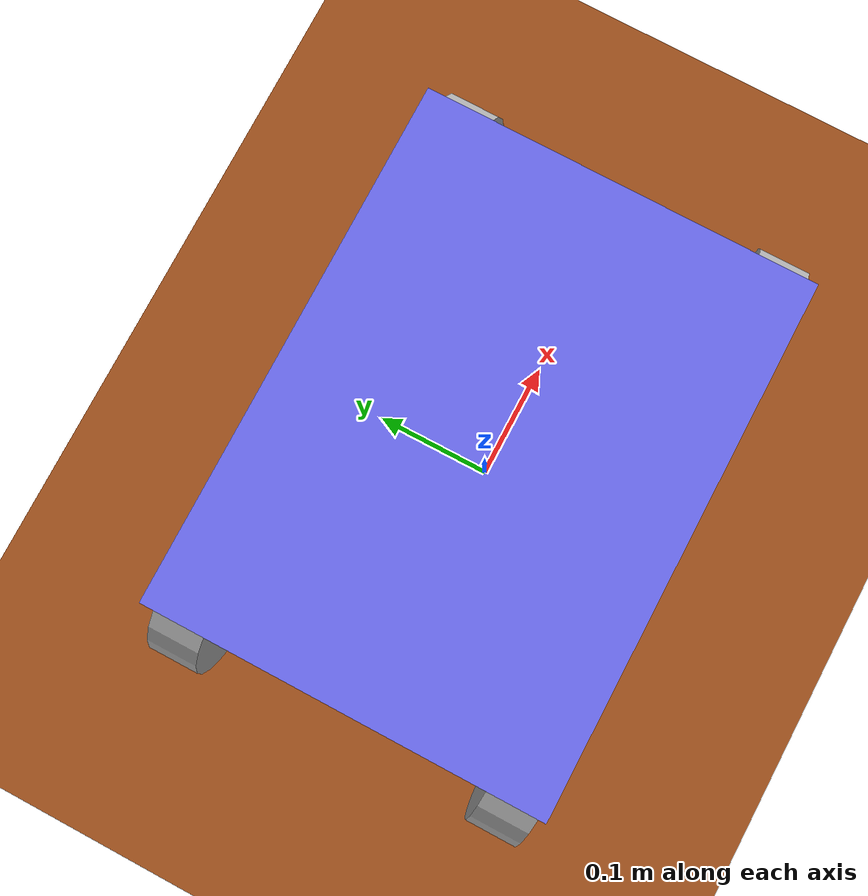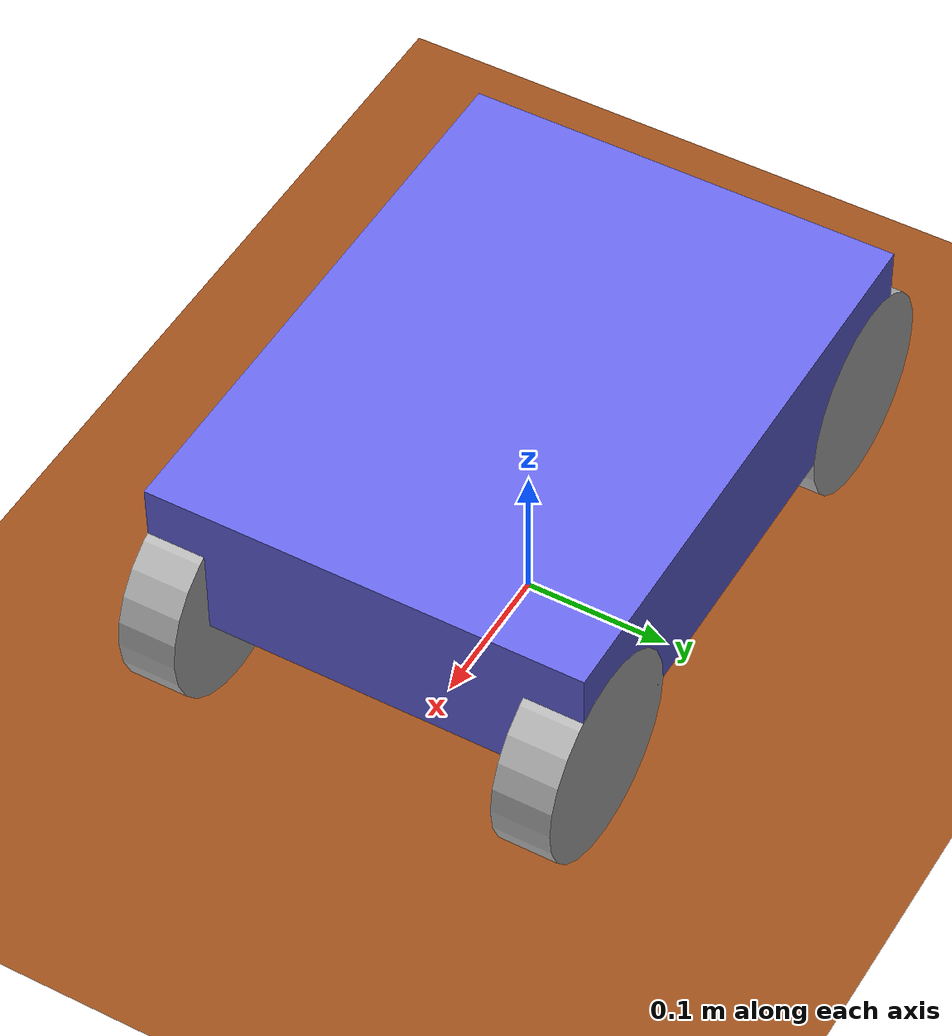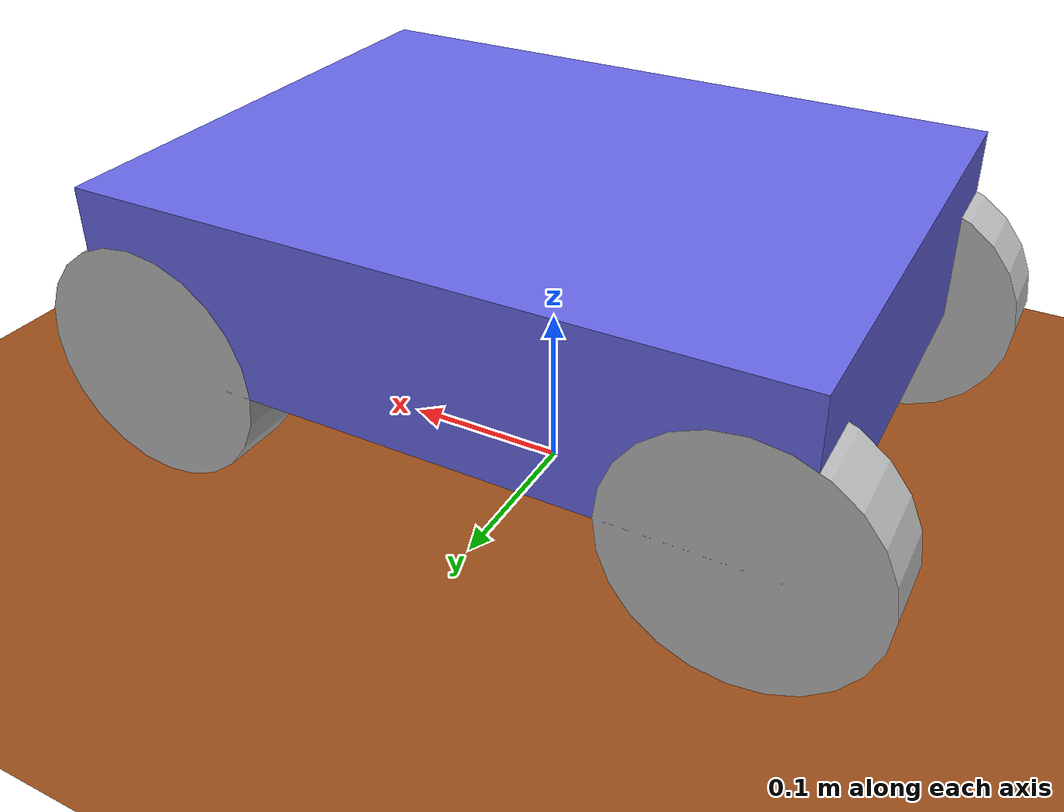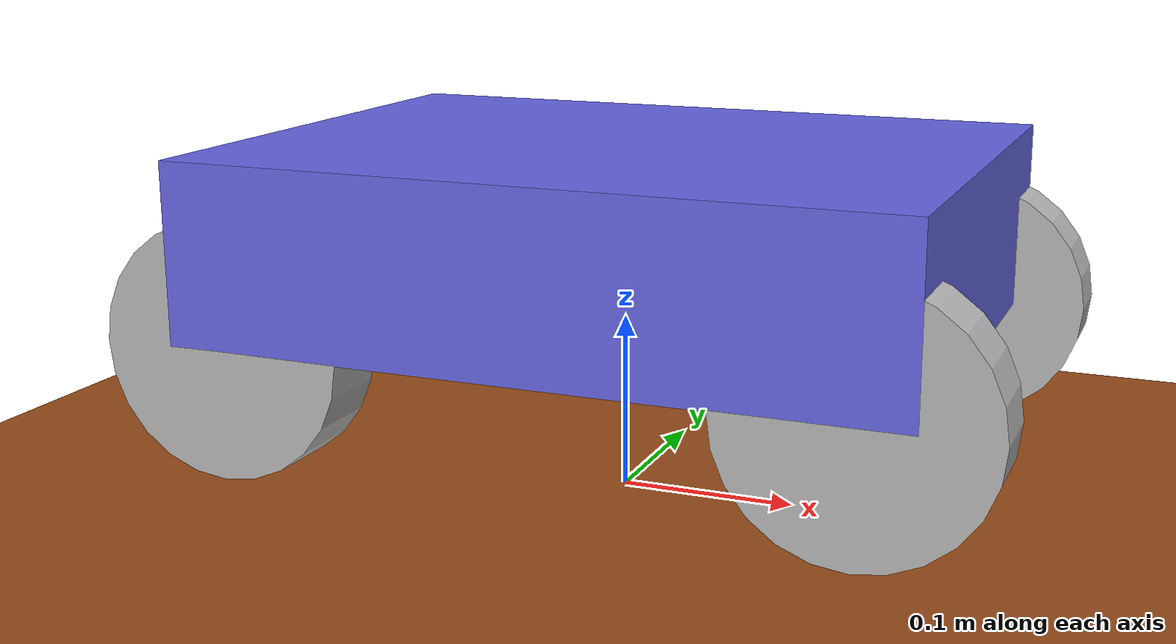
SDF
<sdf version="1.7">
 <world name="my_world">
  <plugin filename="gz-sim-physics-system" name="gz::sim::systems::Physics"/>
  <plugin filename="gz-sim-scene-broadcaster-system" name="gz::sim::systems::SceneBroadcaster"/>
  <plugin filename="gz-sim-sensors-system" name="gz::sim::systems::Sensors">
   <render_engine>ogre2</render_engine>
  </plugin>
  <model name="ground">
   <static>true</static>
   <link name="ground_link">
    <collision name="collision">
     <geometry><plane><normal>0 0 1</normal><size>100 100</size></plane></geometry>
     <surface><contact><collide_without_contact>false</collide_without_contact></contact></surface>
    </collision>
    <visual name="visual">
     <geometry><plane><normal>0 0 1</normal><size>100 100</size></plane></geometry>
     <material>
      <ambient>0.3 0.15 0.05 1</ambient>
      <diffuse>0.6 0.3  0.1  1</diffuse>
      <specular>0.1 0.1  0.1  1</specular>
     </material>
    </visual>
   </link>
  </model>
  <include><uri>model://diffbot</uri><pose>0 0 0.1 0 0 0</pose></include>
 </world>
</sdf>

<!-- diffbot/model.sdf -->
<sdf version="1.7">
  <model name="diffbot">
    <static>false</static>

    <!-- Chassis (lowered and heavier) -->
    <link name="base_link">
      <pose>0 0 0.05 0 0 0</pose> <!-- only 5 cm above ground -->
      <visual name="chassis_visual">
        <geometry><box><size>0.4 0.3 0.1</size></box></geometry>
        <material>
          <ambient>0.3 0.3 0.8 1</ambient>
          <diffuse>0.4 0.4 0.9 1</diffuse>
        </material>
      </visual>
      <collision name="chassis_collision">
        <geometry><box><size>0.4 0.3 0.1</size></box></geometry>
        <surface>
          <friction><ode><mu>1.0</mu><mu2>1.0</mu2></ode></friction>
        </surface>
      </collision>
      <inertial>
        <mass>10.0</mass>
        <inertia>
          <ixx>0.5</ixx>
          <iyy>0.5</iyy>
          <izz>0.5</izz>
        </inertia>
      </inertial>
        <!-- REAL DEPTH SENSOR -->
  <sensor name="depth_camera" type="depth">
    <!-- x  y   z   roll   pitch  yaw -->
    <pose>0 0 0.20  0  0  0</pose>
    <update_rate>30</update_rate>
    <depth_camera>
      <horizontal_fov>1.047</horizontal_fov>
      <image>
        <width>640</width>
        <height>480</height>
        <!-- for float32 depth you want this format -->
        <format>R32F</format>
      </image>
      <clip>
        <near>0.1</near>
        <far>10.0</far>
      </clip>
    </depth_camera>
      <!-- point-cloud generator for Ignition Gazebo -->
  <plugin name="point_cloud" filename="ignition-gazebo-pointcloud-system">
    <!-- must exactly match your sensor’s name -->
    <sensorName>depth_camera</sensorName>
    <!-- these ranges match your clip settings -->
    <minRange>0.1</minRange>
    <maxRange>10</maxRange>
    <!-- topic where the PC will be published -->
    <topicName>/world/my_world/model/diffbot/link/base_link/sensor/depth_camera/depth_image/points</topicName>
  </plugin>
  </sensor>
 <sensor name="rgb_camera" type="camera">
    <!-- position it just above the body -->
    <pose>0 0 0.20  0  0  0</pose>
    <update_rate>30</update_rate>
    <camera>
      <horizontal_fov>1.047</horizontal_fov>
      <image>
        <width>640</width>
        <height>480</height>
        <format>R8G8B8</format>
      </image>
      <clip>
        <near>0.1</near>
        <far>10.0</far>
      </clip>
    </camera>
  </sensor>

    </link>

    <!-- Wheels (unchanged) -->
    <!-- Front Left -->
    <link name="wheel_fl">
      <pose> 0.17  0.13 0 0 0 0</pose>
      <visual name="v_fl"><pose>0 0 0 1.5707 0 0</pose>
        <geometry><cylinder><radius>0.07</radius><length>0.04</length></cylinder></geometry>
      </visual>
      <collision name="c_fl"><pose>0 0 0 1.5707 0 0</pose>
        <geometry><cylinder><radius>0.07</radius><length>0.04</length></cylinder></geometry>
        <surface><friction><ode><mu>1.0</mu><mu2>0.25</mu2></ode></friction></surface>
      </collision>
      <inertial><mass>0.2</mass></inertial>
    </link>
    <!-- Front Right -->
    <link name="wheel_fr">
      <pose> 0.17 -0.13 0 0 0 0</pose>
      <visual name="v_fr"><pose>0 0 0 1.5707 0 0</pose>
        <geometry><cylinder><radius>0.07</radius><length>0.04</length></cylinder></geometry>
      </visual>
      <collision name="c_fr"><pose>0 0 0 1.5707 0 0</pose>
        <geometry><cylinder><radius>0.07</radius><length>0.04</length></cylinder></geometry>
        <surface><friction><ode><mu>1.0</mu><mu2>0.25</mu2></ode></friction></surface>
      </collision>
      <inertial><mass>0.2</mass></inertial>
    </link>
    <!-- Rear Left -->
    <link name="wheel_rl">
      <pose>-0.17  0.13 0 0 0 0</pose>
      <visual name="v_rl"><pose>0 0 0 1.5707 0 0</pose>
        <geometry><cylinder><radius>0.07</radius><length>0.04</length></cylinder></geometry>
      </visual>
      <collision name="c_rl"><pose>0 0 0 1.5707 0 0</pose>
        <geometry><cylinder><radius>0.07</radius><length>0.04</length></cylinder></geometry>
        <surface><friction><ode><mu>0.1</mu><mu2>0.0</mu2></ode></friction></surface>
      </collision>
      <inertial><mass>0.2</mass></inertial>
    </link>
    <!-- Rear Right -->
    <link name="wheel_rr">
      <pose>-0.17 -0.13 0 0 0 0</pose>
      <visual name="v_rr"><pose>0 0 0 1.5707 0 0</pose>
        <geometry><cylinder><radius>0.07</radius><length>0.04</length></cylinder></geometry>
      </visual>
      <collision name="c_rr"><pose>0 0 0 1.5707 0 0</pose>
        <geometry><cylinder><radius>0.07</radius><length>0.04</length></cylinder></geometry>
        <surface><friction><ode><mu>0.1</mu><mu2>0.0</mu2></ode></friction></surface>
      </collision>
      <inertial><mass>0.2</mass></inertial>
    </link>

    <!-- Wheel Joints (strong damping, low effort) -->
    <joint name="joint_wheel_fl" type="revolute">
      <parent>base_link</parent><child>wheel_fl</child>
      <axis>
        <xyz>0 1 0</xyz>
        <limit>
          <lower>-1000</lower><upper>1000</upper>
          <effort>5</effort>
          <velocity>10</velocity>
        </limit>
        <dynamics><damping>2.0</damping></dynamics>
      </axis>
    </joint>
    <joint name="joint_wheel_fr" type="revolute">
      <parent>base_link</parent><child>wheel_fr</child>
      <axis>
        <xyz>0 1 0</xyz>
        <limit>
          <lower>-1000</lower><upper>1000</upper>
          <effort>5</effort>
          <velocity>10</velocity>
        </limit>
        <dynamics><damping>2.0</damping></dynamics>
      </axis>
    </joint>
    <joint name="joint_wheel_rl" type="revolute">
      <parent>base_link</parent><child>wheel_rl</child>
      <axis>
        <xyz>0 1 0</xyz>
        <limit>
          <lower>-1000</lower><upper>1000</upper>
          <effort>5</effort>
          <velocity>10</velocity>
        </limit>
        <dynamics><damping>2.0</damping></dynamics>
      </axis>
    </joint>
    <joint name="joint_wheel_rr" type="revolute">
      <parent>base_link</parent><child>wheel_rr</child>
      <axis>
        <xyz>0 1 0</xyz>
        <limit>
          <lower>-1000</lower><upper>1000</upper>
          <effort>5</effort>
          <velocity>10</velocity>
        </limit>
        <dynamics><damping>2.0</damping></dynamics>
      </axis>
    </joint>

    <!-- DiffDrive plugin with limited force/acceleration -->
    <plugin
      filename="libignition-gazebo-diff-drive-system.so"
      name="ignition::gazebo::systems::DiffDrive">

      <left_joint>joint_wheel_fl</left_joint>
      <left_joint>joint_wheel_rl</left_joint>

      <right_joint>joint_wheel_fr</right_joint>
      <right_joint>joint_wheel_rr</right_joint>

      <wheel_separation>1.08</wheel_separation>
      <wheel_radius>0.07</wheel_radius>

      <topic>/cmd_vel</topic>
      <odom_publish_frequency>20.0</odom_publish_frequency>
      <odom_frame_id>odom</odom_frame_id>
      <base_frame_id>base_link</base_frame_id>
      <publish_odom_tf>true</publish_odom_tf>

      <!-- gentle drive settings -->
      <min_velocity>-5.0</min_velocity>
      <max_velocity>5.0</max_velocity>
      <min_acceleration>-2.0</min_acceleration>
      <max_acceleration>2.0</max_acceleration>
      <min_force>-5.0</min_force>
      <max_force>5.0</max_force>
    </plugin>

  </model>
</sdf>
